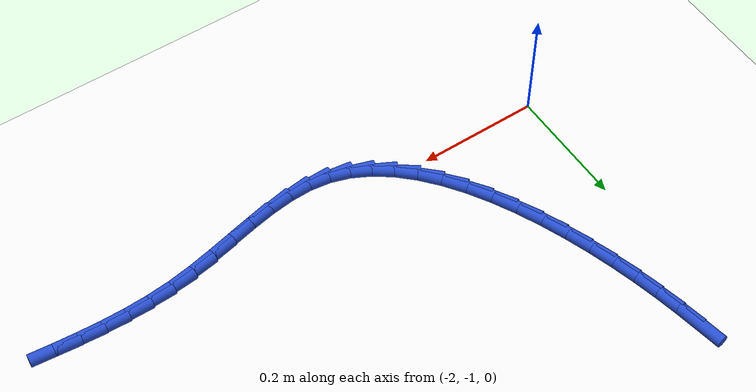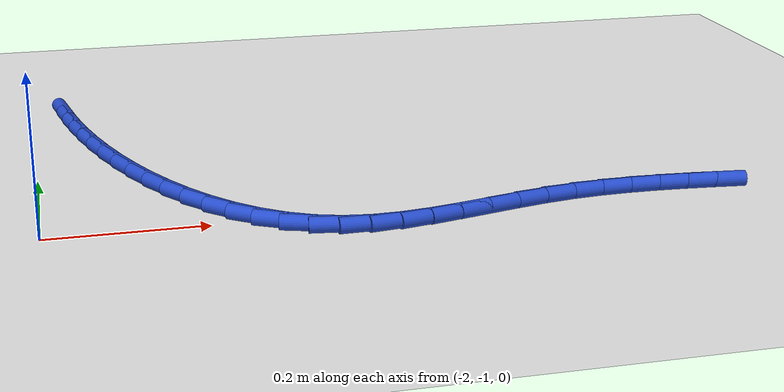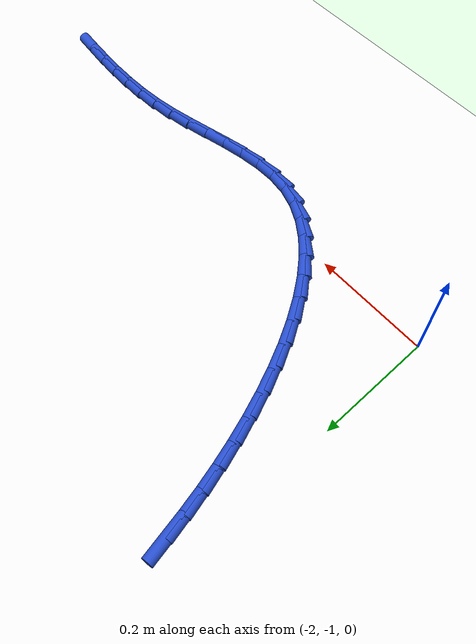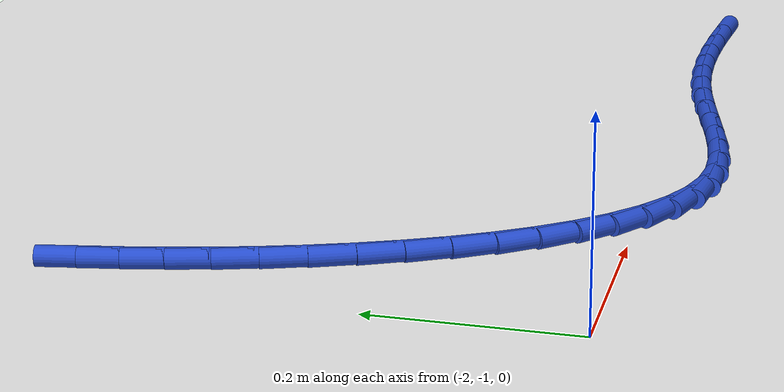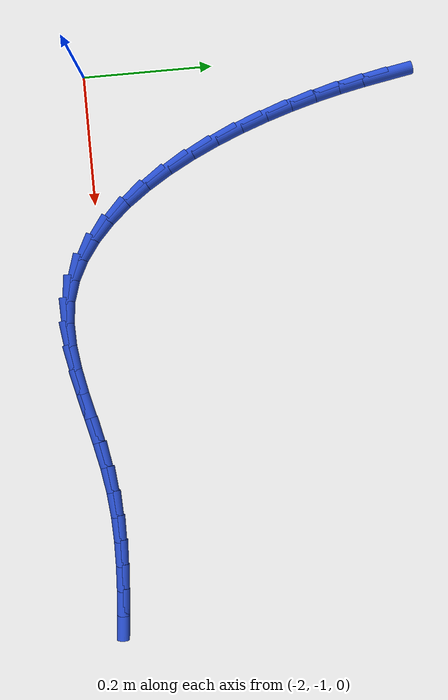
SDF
<sdf version="1.6">
 <world name="default">
  <model name="ground_plane">
   <static>1</static>
   <link name="link">
    <collision name="collision">
     <geometry><plane><normal>0 0 1</normal><size>100 100</size></plane></geometry>
     <surface><friction><ode><mu>100</mu><mu2>50</mu2></ode></friction></surface>
    </collision>
    <visual name="visual">
     <cast_shadows>0</cast_shadows>
     <geometry><plane><normal>0 0 1</normal><size>100 100</size></plane></geometry>
     <material>
      <script><uri>file://media/materials/scripts/gazebo.material</uri><name>Gazebo/WhiteGlow</name></script>
     </material>
    </visual>
   </link>
  </model>
  <model name="line">
   <link name="link_105">
    <pose>-1.9600489886890966 -0.5308313942515871 0.01 0 1.57 -1.392526750925029</pose>
    <collision name="collision">
     <geometry><cylinder><radius>0.01</radius><length>0.08</length></cylinder></geometry>
    </collision>
    <visual name="visual">
     <material>
      <script><name>Gazebo/Blue</name><uri>file://media/materials/scripts/gazebo.material</uri></script>
     </material>
     <geometry><cylinder><radius>0.01</radius><length>0.08</length></cylinder></geometry>
    </visual>
   </link>
   <link name="link_106">
    <pose>-1.9533209531996025 -0.5681715381305125 0.01 0 1.57 -1.3641167002513377</pose>
    <collision name="collision">
     <geometry><cylinder><radius>0.01</radius><length>0.08</length></cylinder></geometry>
    </collision>
    <visual name="visual">
     <material>
      <script><name>Gazebo/Blue</name><uri>file://media/materials/scripts/gazebo.material</uri></script>
     </material>
     <geometry><cylinder><radius>0.01</radius><length>0.08</length></cylinder></geometry>
    </visual>
   </link>
   <link name="link_107">
    <pose>-1.9453565742892118 -0.6061561784023871 0.01 0 1.57 -1.3327509997691134</pose>
    <collision name="collision">
     <geometry><cylinder><radius>0.01</radius><length>0.08</length></cylinder></geometry>
    </collision>
    <visual name="visual">
     <material>
      <script><name>Gazebo/Blue</name><uri>file://media/materials/scripts/gazebo.material</uri></script>
     </material>
     <geometry><cylinder><radius>0.01</radius><length>0.08</length></cylinder></geometry>
    </visual>
   </link>
   <link name="link_108">
    <pose>-1.9359412608130748 -0.6449588582126959 0.01 0 1.57 -1.2992240273513693</pose>
    <collision name="collision">
     <geometry><cylinder><radius>0.01</radius><length>0.08</length></cylinder></geometry>
    </collision>
    <visual name="visual">
     <material>
      <script><name>Gazebo/Blue</name><uri>file://media/materials/scripts/gazebo.material</uri></script>
     </material>
     <geometry><cylinder><radius>0.01</radius><length>0.08</length></cylinder></geometry>
    </visual>
   </link>
   <link name="link_109">
    <pose>-1.9248685413204292 -0.684724186670391 0.01 0 1.57 -1.2639332135279504</pose>
    <collision name="collision">
     <geometry><cylinder><radius>0.01</radius><length>0.08</length></cylinder></geometry>
    </collision>
    <visual name="visual">
     <material>
      <script><name>Gazebo/Blue</name><uri>file://media/materials/scripts/gazebo.material</uri></script>
     </material>
     <geometry><cylinder><radius>0.01</radius><length>0.08</length></cylinder></geometry>
    </visual>
   </link>
   <link name="link_110">
    <pose>-1.9120464543147162 -0.7251887236201037 0.01 0 1.57 -1.2260420014199414</pose>
    <collision name="collision">
     <geometry><cylinder><radius>0.01</radius><length>0.08</length></cylinder></geometry>
    </collision>
    <visual name="visual">
     <material>
      <script><name>Gazebo/Blue</name><uri>file://media/materials/scripts/gazebo.material</uri></script>
     </material>
     <geometry><cylinder><radius>0.01</radius><length>0.08</length></cylinder></geometry>
    </visual>
   </link>
   <link name="link_111">
    <pose>-1.8974677471930694 -0.7657871739106197 0.01 0 1.57 -1.18436665679488</pose>
    <collision name="collision">
     <geometry><cylinder><radius>0.01</radius><length>0.08</length></cylinder></geometry>
    </collision>
    <visual name="visual">
     <material>
      <script><name>Gazebo/Blue</name><uri>file://media/materials/scripts/gazebo.material</uri></script>
     </material>
     <geometry><cylinder><radius>0.01</radius><length>0.08</length></cylinder></geometry>
    </visual>
   </link>
   <link name="link_112">
    <pose>-1.8811271565420797 -0.8059471540349518 0.01 0 1.57 -1.137569506328987</pose>
    <collision name="collision">
     <geometry><cylinder><radius>0.01</radius><length>0.08</length></cylinder></geometry>
    </collision>
    <visual name="visual">
     <material>
      <script><name>Gazebo/Blue</name><uri>file://media/materials/scripts/gazebo.material</uri></script>
     </material>
     <geometry><cylinder><radius>0.01</radius><length>0.08</length></cylinder></geometry>
    </visual>
   </link>
   <link name="link_113">
    <pose>-1.8630194189483376 -0.8450962804861128 0.01 0 1.57 -1.0840567055938235</pose>
    <collision name="collision">
     <geometry><cylinder><radius>0.01</radius><length>0.08</length></cylinder></geometry>
    </collision>
    <visual name="visual">
     <material>
      <script><name>Gazebo/Blue</name><uri>file://media/materials/scripts/gazebo.material</uri></script>
     </material>
     <geometry><cylinder><radius>0.01</radius><length>0.08</length></cylinder></geometry>
    </visual>
   </link>
   <link name="link_114">
    <pose>-1.8431392709984342 -0.8826621697571156 0.01 0 1.57 -1.021872519710189</pose>
    <collision name="collision">
     <geometry><cylinder><radius>0.01</radius><length>0.08</length></cylinder></geometry>
    </collision>
    <visual name="visual">
     <material>
      <script><name>Gazebo/Blue</name><uri>file://media/materials/scripts/gazebo.material</uri></script>
     </material>
     <geometry><cylinder><radius>0.01</radius><length>0.08</length></cylinder></geometry>
    </visual>
   </link>
   <link name="link_115">
    <pose>-1.821481449278959 -0.9180724383409739 0.01 0 1.57 -0.9485987796320402</pose>
    <collision name="collision">
     <geometry><cylinder><radius>0.01</radius><length>0.08</length></cylinder></geometry>
    </collision>
    <visual name="visual">
     <material>
      <script><name>Gazebo/Blue</name><uri>file://media/materials/scripts/gazebo.material</uri></script>
     </material>
     <geometry><cylinder><radius>0.01</radius><length>0.08</length></cylinder></geometry>
    </visual>
   </link>
   <link name="link_116">
    <pose>-1.798040690376504 -0.9507547027306988 0.01 0 1.57 -0.8612977426917636</pose>
    <collision name="collision">
     <geometry><cylinder><radius>0.01</radius><length>0.08</length></cylinder></geometry>
    </collision>
    <visual name="visual">
     <material>
      <script><name>Gazebo/Blue</name><uri>file://media/materials/scripts/gazebo.material</uri></script>
     </material>
     <geometry><cylinder><radius>0.01</radius><length>0.08</length></cylinder></geometry>
    </visual>
   </link>
   <link name="link_117">
    <pose>-1.7728117308776599 -0.9801365794193048 0.01 0 1.57 -0.756598323822779</pose>
    <collision name="collision">
     <geometry><cylinder><radius>0.01</radius><length>0.08</length></cylinder></geometry>
    </collision>
    <visual name="visual">
     <material>
      <script><name>Gazebo/Blue</name><uri>file://media/materials/scripts/gazebo.material</uri></script>
     </material>
     <geometry><cylinder><radius>0.01</radius><length>0.08</length></cylinder></geometry>
    </visual>
   </link>
   <link name="link_118">
    <pose>-1.7457893073690172 -1.0056456848998037 0.01 0 1.57 -0.6311323224474991</pose>
    <collision name="collision">
     <geometry><cylinder><radius>0.01</radius><length>0.08</length></cylinder></geometry>
    </collision>
    <visual name="visual">
     <material>
      <script><name>Gazebo/Blue</name><uri>file://media/materials/scripts/gazebo.material</uri></script>
     </material>
     <geometry><cylinder><radius>0.01</radius><length>0.08</length></cylinder></geometry>
    </visual>
   </link>
   <link name="link_119">
    <pose>-1.716968156437165 -1.0267096356652088 0.01 0 1.57 -0.48263298675776006</pose>
    <collision name="collision">
     <geometry><cylinder><radius>0.01</radius><length>0.08</length></cylinder></geometry>
    </collision>
    <visual name="visual">
     <material>
      <script><name>Gazebo/Blue</name><uri>file://media/materials/scripts/gazebo.material</uri></script>
     </material>
     <geometry><cylinder><radius>0.01</radius><length>0.08</length></cylinder></geometry>
    </visual>
   </link>
   <link name="link_120">
    <pose>-1.6863430146686955 -1.0427560482085332 0.01 0 1.57 -0.31186848234975656</pose>
    <collision name="collision">
     <geometry><cylinder><radius>0.01</radius><length>0.08</length></cylinder></geometry>
    </collision>
    <visual name="visual">
     <material>
      <script><name>Gazebo/Blue</name><uri>file://media/materials/scripts/gazebo.material</uri></script>
     </material>
     <geometry><cylinder><radius>0.01</radius><length>0.08</length></cylinder></geometry>
    </visual>
   </link>
   <link name="link_121">
    <pose>-1.6539086186502 -1.0532125390227896 0.01 0 1.57 -0.13016962135964422</pose>
    <collision name="collision">
     <geometry><cylinder><radius>0.01</radius><length>0.08</length></cylinder></geometry>
    </collision>
    <visual name="visual">
     <material>
      <script><name>Gazebo/Blue</name><uri>file://media/materials/scripts/gazebo.material</uri></script>
     </material>
     <geometry><cylinder><radius>0.01</radius><length>0.08</length></cylinder></geometry>
    </visual>
   </link>
   <link name="link_122">
    <pose>-1.6196908379674355 -1.057691983299306 0.01 0 1.57 0.020224296342981493</pose>
    <collision name="collision">
     <geometry><cylinder><radius>0.01</radius><length>0.08</length></cylinder></geometry>
    </collision>
    <visual name="visual">
     <material>
      <script><name>Gazebo/Blue</name><uri>file://media/materials/scripts/gazebo.material</uri></script>
     </material>
     <geometry><cylinder><radius>0.01</radius><length>0.08</length></cylinder></geometry>
    </visual>
   </link>
   <link name="link_123">
    <pose>-1.5839106498556907 -1.0569682554954651 0.01 0 1.57 0.12630731867143158</pose>
    <collision name="collision">
     <geometry><cylinder><radius>0.01</radius><length>0.08</length></cylinder></geometry>
    </collision>
    <visual name="visual">
     <material>
      <script><name>Gazebo/Blue</name><uri>file://media/materials/scripts/gazebo.material</uri></script>
     </material>
     <geometry><cylinder><radius>0.01</radius><length>0.08</length></cylinder></geometry>
    </visual>
   </link>
   <link name="link_124">
    <pose>-1.5468644490247905 -1.0522640060791892 0.01 0 1.57 0.1938019337190356</pose>
    <collision name="collision">
     <geometry><cylinder><radius>0.01</radius><length>0.08</length></cylinder></geometry>
    </collision>
    <visual name="visual">
     <material>
      <script><name>Gazebo/Blue</name><uri>file://media/materials/scripts/gazebo.material</uri></script>
     </material>
     <geometry><cylinder><radius>0.01</radius><length>0.08</length></cylinder></geometry>
    </visual>
   </link>
   <link name="link_125">
    <pose>-1.5088487926000975 -1.044802851981398 0.01 0 1.57 0.22842561235304762</pose>
    <collision name="collision">
     <geometry><cylinder><radius>0.01</radius><length>0.08</length></cylinder></geometry>
    </collision>
    <visual name="visual">
     <material>
      <script><name>Gazebo/Blue</name><uri>file://media/materials/scripts/gazebo.material</uri></script>
     </material>
     <geometry><cylinder><radius>0.01</radius><length>0.08</length></cylinder></geometry>
    </visual>
   </link>
   <link name="link_126">
    <pose>-1.4701602377069773 -1.0358084101330127 0.01 0 1.57 0.23381456861188266</pose>
    <collision name="collision">
     <geometry><cylinder><radius>0.01</radius><length>0.08</length></cylinder></geometry>
    </collision>
    <visual name="visual">
     <material>
      <script><name>Gazebo/Blue</name><uri>file://media/materials/scripts/gazebo.material</uri></script>
     </material>
     <geometry><cylinder><radius>0.01</radius><length>0.08</length></cylinder></geometry>
    </visual>
   </link>
   <link name="link_127">
    <pose>-1.431095341470795 -1.0265042974649532 0.01 0 1.57 0.2111426888226491</pose>
    <collision name="collision">
     <geometry><cylinder><radius>0.01</radius><length>0.08</length></cylinder></geometry>
    </collision>
    <visual name="visual">
     <material>
      <script><name>Gazebo/Blue</name><uri>file://media/materials/scripts/gazebo.material</uri></script>
     </material>
     <geometry><cylinder><radius>0.01</radius><length>0.08</length></cylinder></geometry>
    </visual>
   </link>
   <link name="link_128">
    <pose>-1.3919506610169137 -1.0181141309081394 0.01 0 1.57 0.15970590013795835</pose>
    <collision name="collision">
     <geometry><cylinder><radius>0.01</radius><length>0.08</length></cylinder></geometry>
    </collision>
    <visual name="visual">
     <material>
      <script><name>Gazebo/Blue</name><uri>file://media/materials/scripts/gazebo.material</uri></script>
     </material>
     <geometry><cylinder><radius>0.01</radius><length>0.08</length></cylinder></geometry>
    </visual>
   </link>
   <link name="link_129">
    <pose>-1.3530186947488285 -1.0118430587082856 0.01 0 1.57 0.09387417594262086</pose>
    <collision name="collision">
     <geometry><cylinder><radius>0.01</radius><length>0.08</length></cylinder></geometry>
    </collision>
    <visual name="visual">
     <material>
      <script><name>Gazebo/Blue</name><uri>file://media/materials/scripts/gazebo.material</uri></script>
     </material>
     <geometry><cylinder><radius>0.01</radius><length>0.08</length></cylinder></geometry>
    </visual>
   </link>
   <link name="link_130">
    <pose>-1.31444134614547 -1.0082109665224315 0.01 0 1.57 0.03512664608457152</pose>
    <collision name="collision">
     <geometry><cylinder><radius>0.01</radius><length>0.08</length></cylinder></geometry>
    </collision>
    <visual name="visual">
     <material>
      <script><name>Gazebo/Blue</name><uri>file://media/materials/scripts/gazebo.material</uri></script>
     </material>
     <geometry><cylinder><radius>0.01</radius><length>0.08</length></cylinder></geometry>
    </visual>
   </link>
   <link name="link_131">
    <pose>-1.2761689501648052 -1.006866032405499 0.01 0 1.57 -0.014039911331784338</pose>
    <collision name="collision">
     <geometry><cylinder><radius>0.01</radius><length>0.08</length></cylinder></geometry>
    </collision>
    <visual name="visual">
     <material>
      <script><name>Gazebo/Blue</name><uri>file://media/materials/scripts/gazebo.material</uri></script>
     </material>
     <geometry><cylinder><radius>0.01</radius><length>0.08</length></cylinder></geometry>
    </visual>
   </link>
   <link name="link_132">
    <pose>-1.2381394392648775 -1.0073999984519568 0.01 0 1.57 -0.052914297982033856</pose>
    <collision name="collision">
     <geometry><cylinder><radius>0.01</radius><length>0.08</length></cylinder></geometry>
    </collision>
    <visual name="visual">
     <material>
      <script><name>Gazebo/Blue</name><uri>file://media/materials/scripts/gazebo.material</uri></script>
     </material>
     <geometry><cylinder><radius>0.01</radius><length>0.08</length></cylinder></geometry>
    </visual>
   </link>
   <link name="link_133">
    <pose>-1.200290745903725 -1.0094046067562736 0.01 0 1.57 -0.0811096900836436</pose>
    <collision name="collision">
     <geometry><cylinder><radius>0.01</radius><length>0.08</length></cylinder></geometry>
    </collision>
    <visual name="visual">
     <material>
      <script><name>Gazebo/Blue</name><uri>file://media/materials/scripts/gazebo.material</uri></script>
     </material>
     <geometry><cylinder><radius>0.01</radius><length>0.08</length></cylinder></geometry>
    </visual>
   </link>
   <link name="link_134">
    <pose>-1.1625608025393888 -1.0124715994129179 0.01 0 1.57 -0.09845412989972835</pose>
    <collision name="collision">
     <geometry><cylinder><radius>0.01</radius><length>0.08</length></cylinder></geometry>
    </collision>
    <visual name="visual">
     <material>
      <script><name>Gazebo/Blue</name><uri>file://media/materials/scripts/gazebo.material</uri></script>
     </material>
     <geometry><cylinder><radius>0.01</radius><length>0.08</length></cylinder></geometry>
    </visual>
   </link>
  </model>
 </world>
</sdf>
